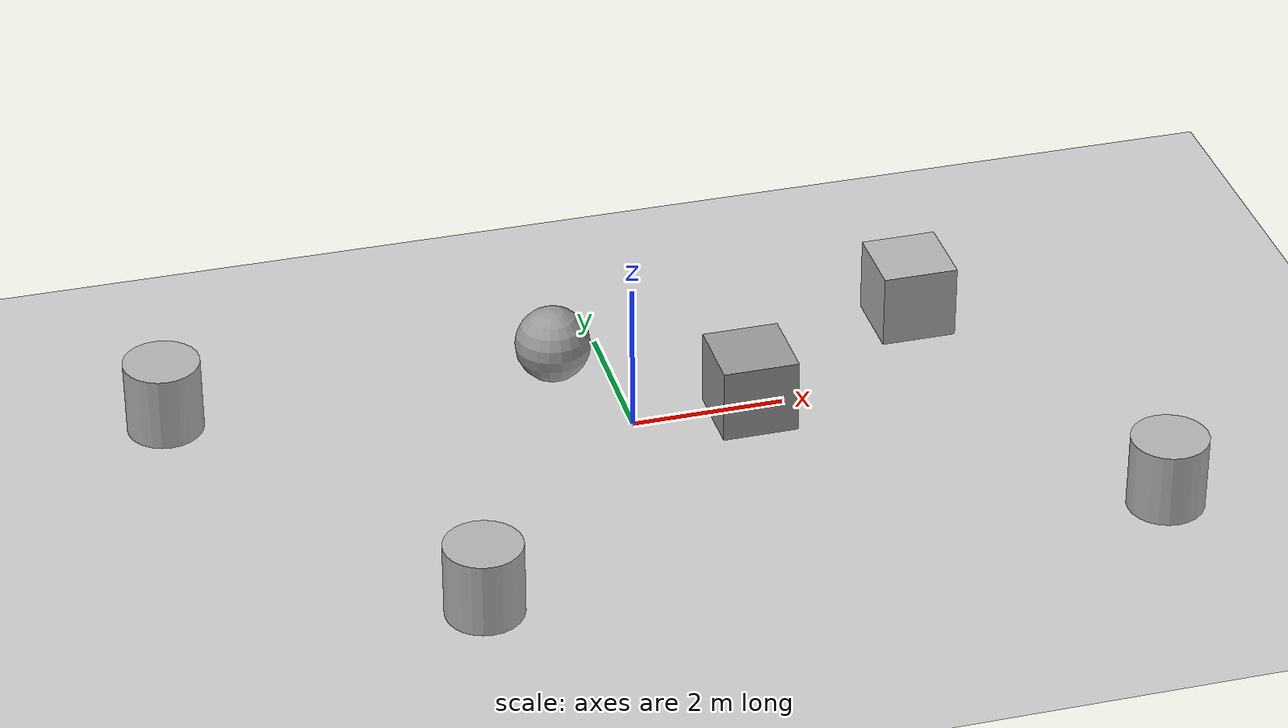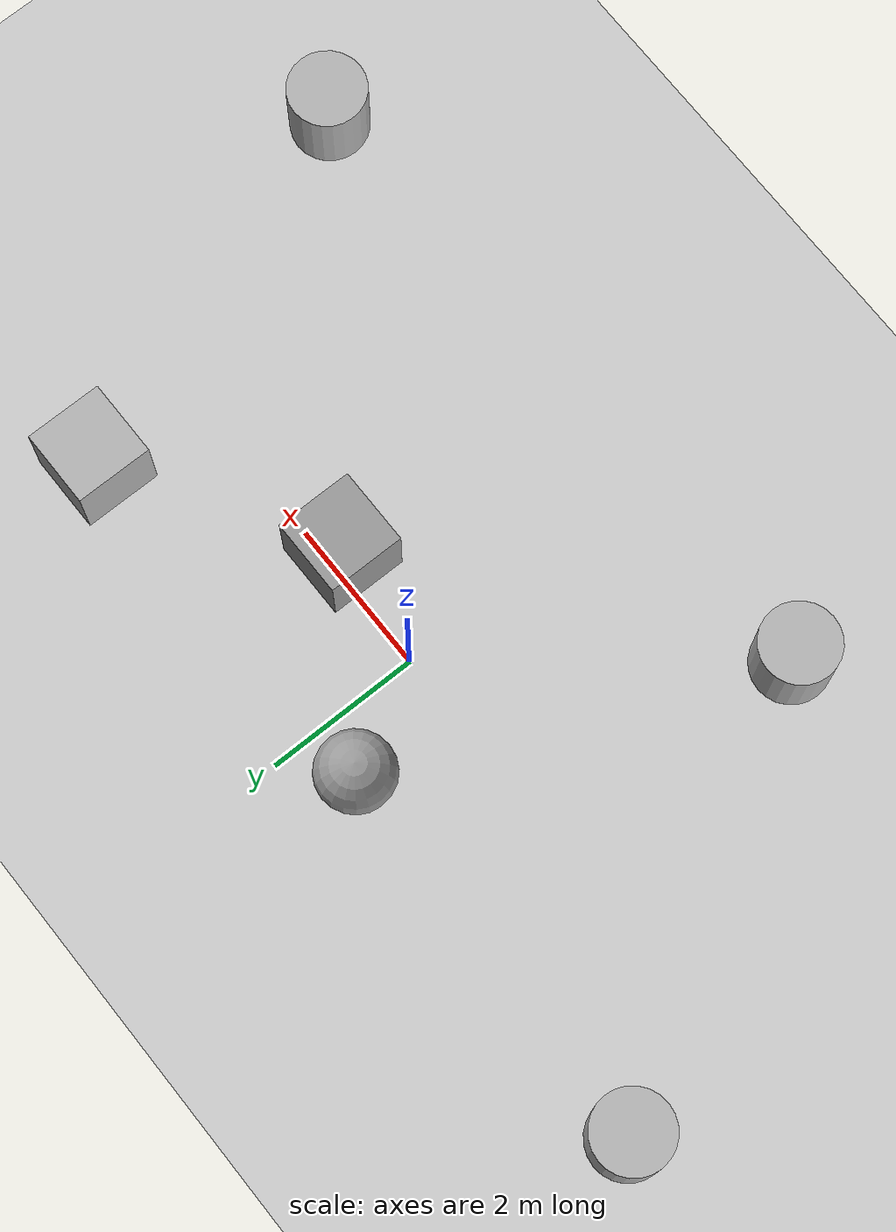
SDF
<sdf version="1.10">
 <world name="my_world">
  <physics name="1ms" type="ignored">
   <max_step_size>0.001</max_step_size>
   <real_time_factor>1</real_time_factor>
   <real_time_update_rate>1000</real_time_update_rate>
  </physics>
  <plugin name="gz::sim::systems::Physics" filename="gz-sim-physics-system"/>
  <plugin name="gz::sim::systems::UserCommands" filename="gz-sim-user-commands-system"/>
  <plugin name="gz::sim::systems::SceneBroadcaster" filename="gz-sim-scene-broadcaster-system"/>
  <plugin name="gz::sim::systems::Imu" filename="gz-sim-imu-system"/>
  <plugin name="gz::sim::systems::Sensors" filename="gz-sim-sensors-system">
   <render_engine>ogre2</render_engine>
  </plugin>
  <gravity>0 0 -9.8000000000000007</gravity>
  <magnetic_field>6.0000000000000002e-06 2.3e-05 -4.1999999999999998e-05</magnetic_field>
  <atmosphere type="adiabatic"/>
  <physics type="ode">
   <max_step_size>0.001</max_step_size>
   <real_time_factor>1</real_time_factor>
   <real_time_update_rate>1000</real_time_update_rate>
  </physics>
  <scene>
   <ambient>0.400000006 0.400000006 0.400000006 1</ambient>
   <background>0.699999988 0.699999988 0.699999988 1</background>
   <shadows>true</shadows>
  </scene>
  <spherical_coordinates>
   <surface_model>EARTH_WGS84</surface_model>
   <latitude_deg>0</latitude_deg>
   <longitude_deg>0</longitude_deg>
   <elevation>0</elevation>
   <heading_deg>0</heading_deg>
  </spherical_coordinates>
  <model name="ground_plane">
   <static>true</static>
   <link name="link">
    <collision name="collision">
     <geometry><plane><normal>0 0 1</normal><size>100 100</size></plane></geometry>
     <surface><friction><ode><mu>100</mu><mu2>50</mu2></ode></friction></surface>
    </collision>
    <visual name="visual">
     <cast_shadows>false</cast_shadows>
     <geometry><plane><normal>0 0 1</normal><size>100 100</size></plane></geometry>
     <material>
      <script><uri>file://media/materials/scripts/gazebo.material</uri><name>Gazebo/Grey</name></script>
     </material>
    </visual>
    <inertial>
     <mass>1</mass>
     <inertia><ixx>1</ixx><ixy>0</ixy><ixz>0</ixz><iyy>1</iyy><iyz>0</iyz><izz>1</izz></inertia>
    </inertial>
   </link>
  </model>
  <model name="unit_box">
   <pose>1.5127200000000001 -0.181418 0.49999500000000002 0 1.0000000000000001e-05 0</pose>
   <link name="link">
    <inertial>
     <mass>1</mass>
     <inertia>
      <ixx>0.16666700000000001</ixx>
      <ixy>0</ixy>
      <ixz>0</ixz>
      <iyy>0.16666700000000001</iyy>
      <iyz>0</iyz>
      <izz>0.16666700000000001</izz>
     </inertia>
    </inertial>
    <collision name="collision"><geometry><box><size>1 1 1</size></box></geometry></collision>
    <visual name="visual">
     <geometry><box><size>1 1 1</size></box></geometry>
     <material>
      <script><name>Gazebo/Grey</name><uri>file://media/materials/scripts/gazebo.material</uri></script>
     </material>
    </visual>
   </link>
   <static>false</static>
  </model>
  <model name="unit_sphere">
   <pose>-0.72583299999999995 1.36206 0.5 0 0 0</pose>
   <link name="link">
    <inertial>
     <mass>1</mass>
     <inertia>
      <ixx>0.10000000000000001</ixx>
      <ixy>0</ixy>
      <ixz>0</ixz>
      <iyy>0.10000000000000001</iyy>
      <iyz>0</iyz>
      <izz>0.10000000000000001</izz>
     </inertia>
    </inertial>
    <collision name="collision"><geometry><sphere><radius>0.5</radius></sphere></geometry></collision>
    <visual name="visual">
     <geometry><sphere><radius>0.5</radius></sphere></geometry>
     <material>
      <script><name>Gazebo/Grey</name><uri>file://media/materials/scripts/gazebo.material</uri></script>
     </material>
    </visual>
   </link>
   <static>false</static>
  </model>
  <model name="box">
   <pose>4.1769749279862474 1.4428456044376066 0.49999999990199806 6.2287739151293738e-22 9.3279666454713669e-22 -3.6315533669320137e-22</pose>
   <link name="box_link">
    <inertial>
     <inertia><ixx>0.16666</ixx><ixy>0</ixy><ixz>0</ixz><iyy>0.16666</iyy><iyz>0</iyz><izz>0.16666</izz></inertia>
     <mass>1</mass>
    </inertial>
    <collision name="box_collision"><geometry><box><size>1 1 1</size></box></geometry></collision>
    <visual name="box_visual">
     <geometry><box><size>1 1 1</size></box></geometry>
     <material>
      <ambient>0.300000012 0.300000012 0.300000012 1</ambient>
      <diffuse>0.699999988 0.699999988 0.699999988 1</diffuse>
      <specular>1 1 1 1</specular>
     </material>
    </visual>
   </link>
   <static>false</static>
  </model>
  <model name="cylinder">
   <pose>5.99105835522173 -3.4822629558568221 0.49999942638036005 8.7198202526024248e-20 9.5455268957526785e-20 3.7952239329843655e-21</pose>
   <link name="cylinder_link">
    <inertial>
     <inertia>
      <ixx>0.14580000000000001</ixx>
      <ixy>0</ixy>
      <ixz>0</ixz>
      <iyy>0.14580000000000001</iyy>
      <iyz>0</iyz>
      <izz>0.125</izz>
     </inertia>
     <mass>1</mass>
    </inertial>
    <collision name="cylinder_collision">
     <geometry><cylinder><radius>0.5</radius><length>1</length></cylinder></geometry>
    </collision>
    <visual name="cylinder_visual">
     <geometry><cylinder><radius>0.5</radius><length>1</length></cylinder></geometry>
     <material>
      <ambient>0.300000012 0.300000012 0.300000012 1</ambient>
      <diffuse>0.699999988 0.699999988 0.699999988 1</diffuse>
      <specular>1 1 1 1</specular>
     </material>
    </visual>
   </link>
   <static>false</static>
  </model>
  <model name="cylinder_0">
   <pose>-2.7966008712723545 -3.4750486257833879 0.49999942638036005 2.4532975950008064e-19 -1.0463275273897159e-19 -5.5725260505962394e-21</pose>
   <link name="cylinder_link">
    <inertial>
     <inertia>
      <ixx>0.14580000000000001</ixx>
      <ixy>0</ixy>
      <ixz>0</ixz>
      <iyy>0.14580000000000001</iyy>
      <iyz>0</iyz>
      <izz>0.125</izz>
     </inertia>
     <mass>1</mass>
    </inertial>
    <collision name="cylinder_collision">
     <geometry><cylinder><radius>0.5</radius><length>1</length></cylinder></geometry>
    </collision>
    <visual name="cylinder_visual">
     <geometry><cylinder><radius>0.5</radius><length>1</length></cylinder></geometry>
     <material>
      <ambient>0.300000012 0.300000012 0.300000012 1</ambient>
      <diffuse>0.699999988 0.699999988 0.699999988 1</diffuse>
      <specular>1 1 1 1</specular>
     </material>
    </visual>
   </link>
   <static>false</static>
  </model>
  <model name="cylinder_1">
   <pose>-5.8389379545771911 1.5107006861841696 0.49999942638036005 2.1347337498596903e-19 4.4790505095154548e-19 -1.8114420411436273e-20</pose>
   <link name="cylinder_link">
    <inertial>
     <inertia>
      <ixx>0.14580000000000001</ixx>
      <ixy>0</ixy>
      <ixz>0</ixz>
      <iyy>0.14580000000000001</iyy>
      <iyz>0</iyz>
      <izz>0.125</izz>
     </inertia>
     <mass>1</mass>
    </inertial>
    <collision name="cylinder_collision">
     <geometry><cylinder><radius>0.5</radius><length>1</length></cylinder></geometry>
    </collision>
    <visual name="cylinder_visual">
     <geometry><cylinder><radius>0.5</radius><length>1</length></cylinder></geometry>
     <material>
      <ambient>0.300000012 0.300000012 0.300000012 1</ambient>
      <diffuse>0.699999988 0.699999988 0.699999988 1</diffuse>
      <specular>1 1 1 1</specular>
     </material>
    </visual>
   </link>
   <static>false</static>
  </model>
  <light name="sun" type="directional">
   <pose>0 0 10 0 0 0</pose>
   <intensity>1</intensity>
   <direction>-0.5 0.10000000000000001 -0.90000000000000002</direction>
   <diffuse>0.800000012 0.800000012 0.800000012 1</diffuse>
   <specular>0.200000003 0.200000003 0.200000003 1</specular>
   <attenuation>
    <range>1000</range>
    <linear>0.0099999997764825821</linear>
    <constant>0.89999997615814209</constant>
    <quadratic>0.0010000000474974513</quadratic>
   </attenuation>
   <spot><inner_angle>0</inner_angle><outer_angle>0</outer_angle><falloff>0</falloff></spot>
  </light>
 </world>
</sdf>
